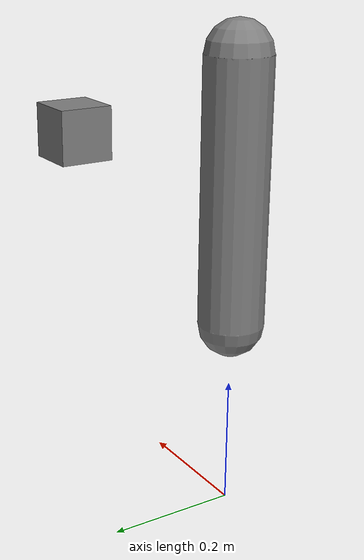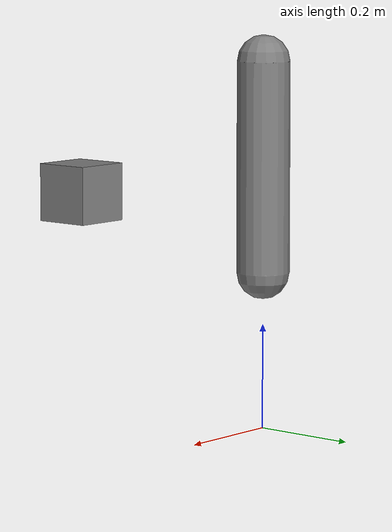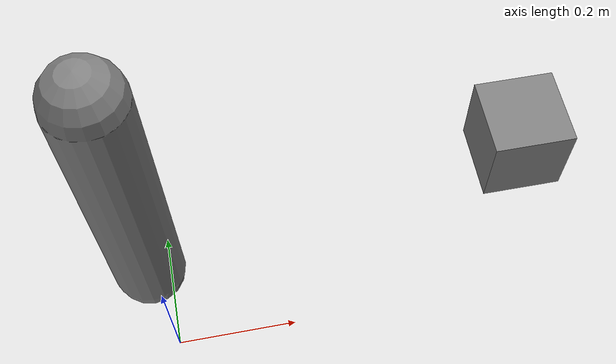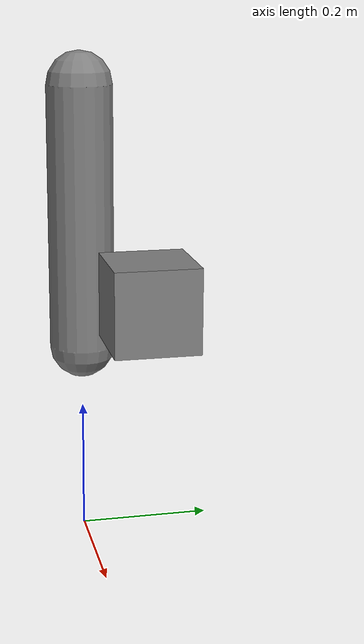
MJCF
<mujoco model="servo_droop_fixed">
  <worldbody>
    <body name="base" pos="0 0 0.5">
      <joint name="shoulder" type="hinge" axis="0 1 0" damping="50.0"/>
      <geom name="base_geom" type="capsule" size="0.05 0.2" mass="0.1"/>
      <body name="arm" pos="0.2 0 0">
        <joint name="elbow" type="hinge" axis="0 1 0" damping="50.0"/>
        <geom name="heavy" type="box" size="0.05 0.05 0.05" mass="8.0" pos="0.3 0 0"/>
      </body>
    </body>
  </worldbody>
  <actuator>
    <position name="shoulder_servo" joint="shoulder" kp="5000" ctrlrange="-3 3"/>
    <position name="elbow_servo" joint="elbow" kp="5000" ctrlrange="-3 3"/>
  </actuator>
</mujoco>
